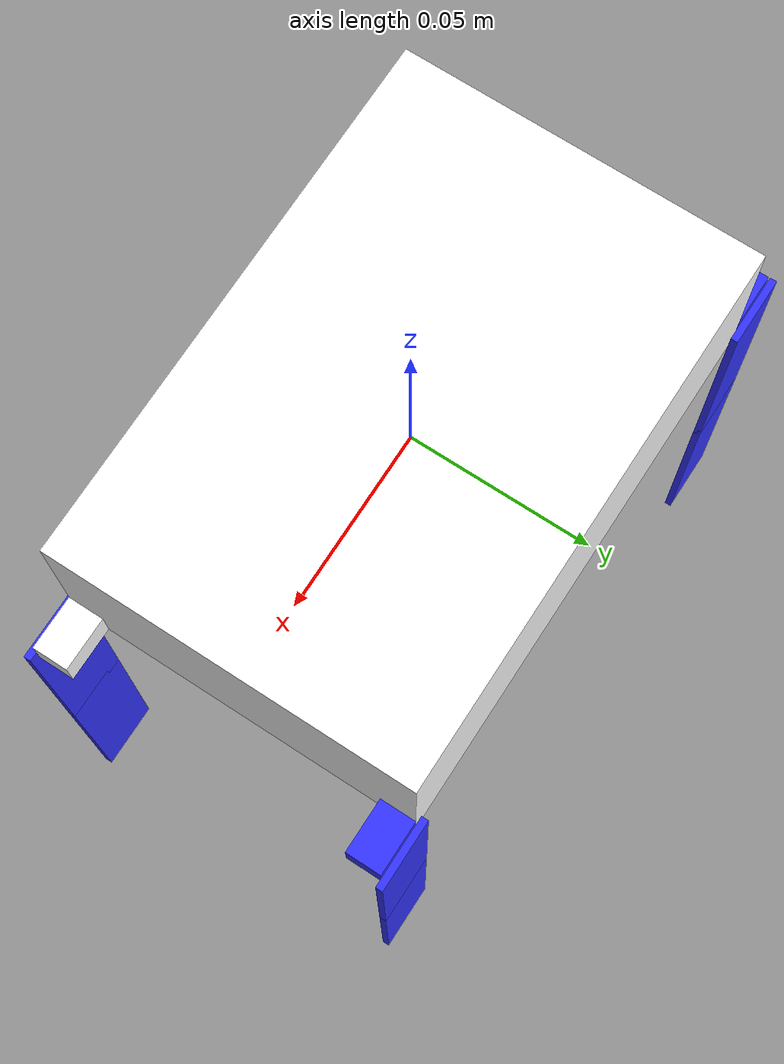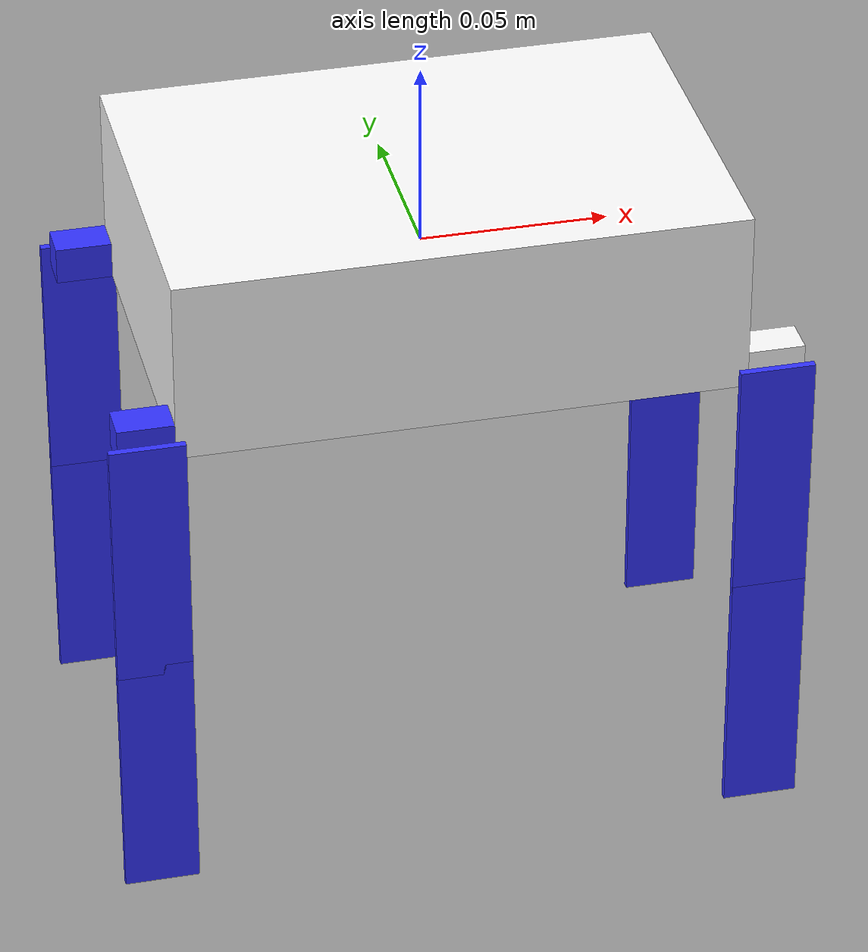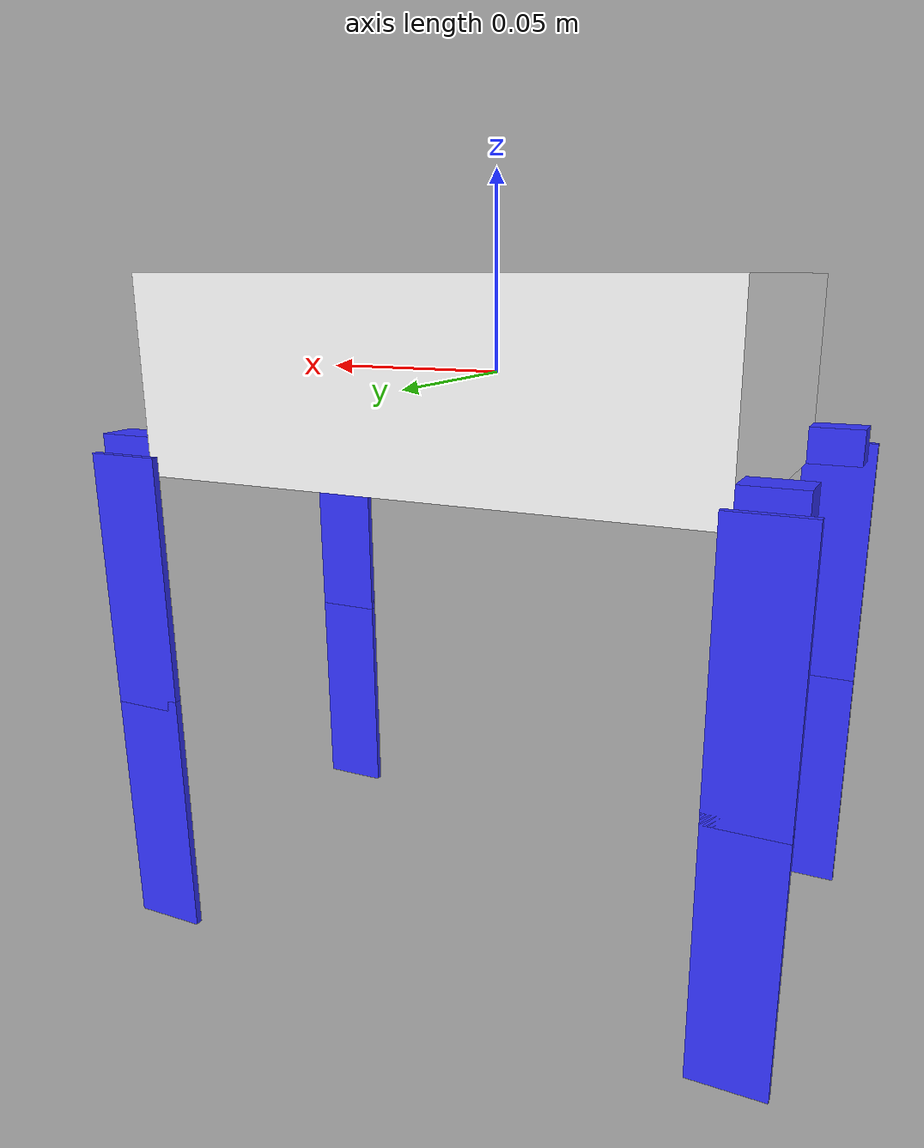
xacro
<?xml version="1.0"?>
<robot xmlns:xacro="http://www.ros.org/wiki/xacro"  name="robot">

    <xacro:include filename="inertial_macros.xacro"/>
    <material name="white">
        <color rgba = "1 1 1 1" />
    </material>

    <material name="orange">
        <color rgba = "1 0.3 0.3 1" />
    </material>
    <material name="blue">
        <color rgba = "0.2 0.2 1 1" />
    </material>
    <material name="black">
        <color rgba = "0 0 0 1" />
    </material>

    <!--common practice to create a base link . commonly placed on centre-->
    <link name = "base_link">
        <visual>
            <origin xyz="0 0 0"/>
            <material name="white"/>
            <geometry>

                <box size = "0.15 0.10 0.05"/>
            </geometry>
        </visual>
    </link>
    <joint name = "servo1_joint_1" type="revolute">
        <parent link = "base_link"/>
        <child link = "servo1_link_1"/>
        <origin xyz = "0.0825 -0.045 -0.02"/>
        <axis xyz = "1 0 0"/>
        <limit lower="-1.57" upper="1.57" effort = "10000" velocity="100.0"/>
    </joint>

    <link name="servo1_link_1">
        <visual>
            <origin xyz="0 0 0 "/>
            <material name="white"/>
            <geometry>
                <box size = "0.015 0.010 0.01"/>
            </geometry>

        </visual>
        <collision>
            <origin xyz="0.0825 -0.045 -0.02"/>
            <material name="white"/>
            <geometry>
                <box size = "0.015 0.010 0.01"/>
            </geometry>

        </collision>
        <xacro:inertial_box mass='0.5' x='0.3' y='0.3' z='0.15'>
            <origin xyz="0.15 0 0.075" rpy='0 0 0'/>
        </xacro:inertial_box>

    </link>

    <joint name = "servo2_joint_1" type="revolute">
        <parent link = "servo1_link_1"/>
        <child link = "servo2_link_1"/>
        <origin xyz = "0 -0.006 0"/>
        <axis xyz = "0 1 0"/>
        <limit lower="-1.57" upper="1.57" effort = "10000" velocity="100.0"/>
    </joint>

    <link name="servo2_link_1">
        <visual>
            <origin xyz="0 0 -0.035"/>
            <material name="blue"/>
            <geometry>
                <box size = "0.02 0.002 0.07"/>
            </geometry>

        </visual>
        <collision>
            <origin xyz="0 0 -0.0675"/>
            <material name="blue"/>
            <geometry>
                <box size = "0.02 0.002 0.07"/>
            </geometry>

        </collision>
        <xacro:inertial_box mass='0.5' x='0.3' y='0.3' z='0.15'>
            <origin xyz="0.15 0 0.075" rpy='0 0 0'/>
        </xacro:inertial_box>

    </link>

    <joint name = "servo3_joint_1" type="revolute">
        <parent link = "servo2_link_1"/>
        <child link = "servo3_link_1"/>
        <origin xyz = "0 0 -0.068"/>
        <axis xyz = "0 1 0"/>
        <limit lower="0" upper="3.14" effort = "10000" velocity="100.0"/>
    </joint>

    <link name="servo3_link_1">
        <visual>
            <origin xyz="0 0 -0.034"/>
            <material name="blue"/>
            <geometry>
                <box size = "0.02 0.002 0.07"/>
            </geometry>

        </visual>
        <collision>
            <origin xyz="0 0 -0.0675"/>
            <material name="blue"/>
            <geometry>
                <box size = "0.02 0.002 0.07"/>
            </geometry>

        </collision>
        <xacro:inertial_box mass='0.5' x='0.3' y='0.3' z='0.15'>
            <origin xyz="0.15 0 0.075" rpy='0 0 0'/>
        </xacro:inertial_box>
    </link>

    <!-- Leg 2 -->

    <joint name = "leg_2_servo1_joint_1" type="revolute">
        <parent link = "base_link"/>
        <child link = "leg_2_servo1_link_1"/>
        <origin xyz = "0.0825 0.045 -0.02"/>
        <axis xyz = "1 0 0"/>
        <limit lower="-1.57" upper="1.57" effort = "10000" velocity="100.0"/>
    </joint>

    <link name="leg_2_servo1_link_1">
        <visual>
            <origin xyz="0 0 0 "/>
            <material name="blue"/>
            <geometry>
                <box size = "0.015 0.010 0.01"/>
            </geometry>

        </visual>
        <collision>
            <origin xyz="0.0825 -0.045 -0.02"/>
            <material name="blue"/>
            <geometry>
                <box size = "0.015 0.010 0.01"/>
            </geometry>

        </collision>
        <xacro:inertial_box mass='0.5' x='0.3' y='0.3' z='0.15'>
            <origin xyz="0.15 0 0.075" rpy='0 0 0'/>
        </xacro:inertial_box>

    </link>

    <joint name = "leg_2_servo2_joint_1" type="revolute">
        <parent link = "leg_2_servo1_link_1"/>
        <child link = "leg_2_servo2_link_1"/>
        <origin xyz = "0 0.006 0"/>
        <axis xyz = "0 1 0"/>
        <limit lower="-1.57" upper="1.57" effort = "10000" velocity="100.0"/>
    </joint>

    <link name="leg_2_servo2_link_1">
        <visual>
            <origin xyz="0 0 -0.035"/>
            <material name="blue"/>
            <geometry>
                <box size = "0.02 0.002 0.07"/>
            </geometry>

        </visual>
        <collision>
            <origin xyz="0 0 -0.0675"/>
            <material name="blue"/>
            <geometry>
                <box size = "0.02 0.002 0.07"/>
            </geometry>

        </collision>
        <xacro:inertial_box mass='0.5' x='0.3' y='0.3' z='0.15'>
            <origin xyz="0.15 0 0.075" rpy='0 0 0'/>
        </xacro:inertial_box>

    </link>

    <joint name = "leg_2_servo3_joint_3" type="revolute">
        <parent link = "leg_2_servo2_link_1"/>
        <child link = "leg_2_servo3_link_1"/>
        <origin xyz = "0 0 -0.068"/>
        <axis xyz = "0 1 0"/>
        <limit lower="-1.57" upper="1.57" effort = "10000" velocity="100.0"/>
    </joint>

    <link name="leg_2_servo3_link_1">
        <visual>
            <origin xyz="0 0 -0.034"/>
            <material name="blue"/>
            <geometry>
                <box size = "0.02 0.002 0.07"/>
            </geometry>

        </visual>
        <collision>
            <origin xyz="0 0 -0.0675"/>
            <material name="blue"/>
            <geometry>
                <box size = "0.02 0.002 0.07"/>
            </geometry>

        </collision>
        <xacro:inertial_box mass='0.5' x='0.3' y='0.3' z='0.15'>
            <origin xyz="0.15 0 0.075" rpy='0 0 0'/>
        </xacro:inertial_box>
    </link>
    <!-- leg 3 -->

    <joint name = "leg_3_servo1_joint_1" type="revolute">
        <parent link = "base_link"/>
        <child link = "leg_3_servo1_link_1"/>
        <origin xyz = "-0.0825 0.045 -0.02"/>
        <axis xyz = "1 0 0"/>
        <limit lower="-1.57" upper="1.57" effort = "10000" velocity="100.0"/>
    </joint>

    <link name="leg_3_servo1_link_1">
        <visual>
            <origin xyz="0 0 0 "/>
            <material name="blue"/>
            <geometry>
                <box size = "0.015 0.010 0.01"/>
            </geometry>

        </visual>
        <collision>
            <origin xyz="0.0825 -0.045 -0.02"/>
            <material name="blue"/>
            <geometry>
                <box size = "0.015 0.010 0.01"/>
            </geometry>

        </collision>
        <xacro:inertial_box mass='0.5' x='0.3' y='0.3' z='0.15'>
            <origin xyz="0.15 0 0.075" rpy='0 0 0'/>
        </xacro:inertial_box>

    </link>

    <joint name = "leg_3_servo2_joint_1" type="revolute">
        <parent link = "leg_3_servo1_link_1"/>
        <child link = "leg_3_servo2_link_1"/>
        <origin xyz = "0 0.006 0"/>
        <axis xyz = "0 1 0"/>
        <limit lower="-1.57" upper="1.57" effort = "10000" velocity="100.0"/>
    </joint>

    <link name="leg_3_servo2_link_1">
        <visual>
            <origin xyz="0 0 -0.035"/>
            <material name="blue"/>
            <geometry>
                <box size = "0.02 0.002 0.07"/>
            </geometry>

        </visual>
        <collision>
            <origin xyz="0 0 -0.0675"/>
            <material name="blue"/>
            <geometry>
                <box size = "0.02 0.002 0.07"/>
            </geometry>

        </collision>
        <xacro:inertial_box mass='0.5' x='0.3' y='0.3' z='0.15'>
            <origin xyz="0.15 0 0.075" rpy='0 0 0'/>
        </xacro:inertial_box>

    </link>

    <joint name = "leg_3_servo3_joint_3" type="revolute">
        <parent link = "leg_3_servo2_link_1"/>
        <child link = "leg_3_servo3_link_1"/>
        <origin xyz = "0 0 -0.068"/>
        <axis xyz = "0 1 0"/>
        <limit lower="-1.57" upper="1.57" effort = "10000" velocity="100.0"/>
    </joint>

    <link name="leg_3_servo3_link_1">
        <visual>
            <origin xyz="0 0 -0.034"/>
            <material name="blue"/>
            <geometry>
                <box size = "0.02 0.002 0.07"/>
            </geometry>

        </visual>
        <collision>
            <origin xyz="0 0 -0.0675"/>
            <material name="blue"/>
            <geometry>
                <box size = "0.02 0.002 0.07"/>
            </geometry>

        </collision>
        <xacro:inertial_box mass='0.5' x='0.3' y='0.3' z='0.15'>
            <origin xyz="0.15 0 0.075" rpy='0 0 0'/>
        </xacro:inertial_box>
    </link>

    <!-- link 4 -->
    <joint name = "leg_4_servo1_joint_1" type="revolute">
        <parent link = "base_link"/>
        <child link = "leg_4_servo1_link_1"/>
        <origin xyz = "-0.0825 -0.045 -0.02"/>
        <axis xyz = "1 0 0"/>
        <limit lower="-1.57" upper="1.57" effort = "10000" velocity="100.0"/>
    </joint>

    <link name="leg_4_servo1_link_1">
        <visual>
            <origin xyz="0 0 0 "/>
            <material name="blue"/>
            <geometry>
                <box size = "0.015 0.010 0.01"/>
            </geometry>

        </visual>
        <collision>
            <origin xyz="0.0825 -0.045 -0.02"/>
            <material name="blue"/>
            <geometry>
                <box size = "0.015 0.010 0.01"/>
            </geometry>

        </collision>
        <xacro:inertial_box mass='0.5' x='0.3' y='0.3' z='0.15'>
            <origin xyz="0.15 0 0.075" rpy='0 0 0'/>
        </xacro:inertial_box>

    </link>

    <joint name = "leg_4_servo2_joint_1" type="revolute">
        <parent link = "leg_4_servo1_link_1"/>
        <child link = "leg_4_servo2_link_1"/>
        <origin xyz = "0 -0.006 0"/>
        <axis xyz = "0 1 0"/>
        <limit lower="-1.57" upper="1.57" effort = "10000" velocity="100.0"/>
    </joint>

    <link name="leg_4_servo2_link_1">
        <visual>
            <origin xyz="0 0 -0.035"/>
            <material name="blue"/>
            <geometry>
                <box size = "0.02 0.002 0.07"/>
            </geometry>

        </visual>
        <collision>
            <origin xyz="0 0 -0.0675"/>
            <material name="blue"/>
            <geometry>
                <box size = "0.02 0.002 0.07"/>
            </geometry>

        </collision>
        <xacro:inertial_box mass='0.5' x='0.3' y='0.3' z='0.15'>
            <origin xyz="0.15 0 0.075" rpy='0 0 0'/>
        </xacro:inertial_box>

    </link>

    <joint name = "leg_4_servo3_joint_1" type="revolute">
        <parent link = "leg_4_servo2_link_1"/>
        <child link = "leg_4_servo3_link_1"/>
        <origin xyz = "0 0 -0.068"/>
        <axis xyz = "0 1 0"/>
        <limit lower="-1.57" upper="1.57" effort = "10000" velocity="100.0"/>
    </joint>

    <link name="leg_4_servo3_link_1">
        <visual>
            <origin xyz="0 0 -0.034"/>
            <material name="blue"/>
            <geometry>
                <box size = "0.02 0.002 0.07"/>
            </geometry>

        </visual>
        <collision>
            <origin xyz="0 0 -0.0675"/>
            <material name="blue"/>
            <geometry>
                <box size = "0.02 0.002 0.07"/>
            </geometry>

        </collision>
        <xacro:inertial_box mass='0.5' x='0.3' y='0.3' z='0.15'>
            <origin xyz="0.15 0 0.075" rpy='0 0 0'/>
        </xacro:inertial_box>
    </link>
</robot>
